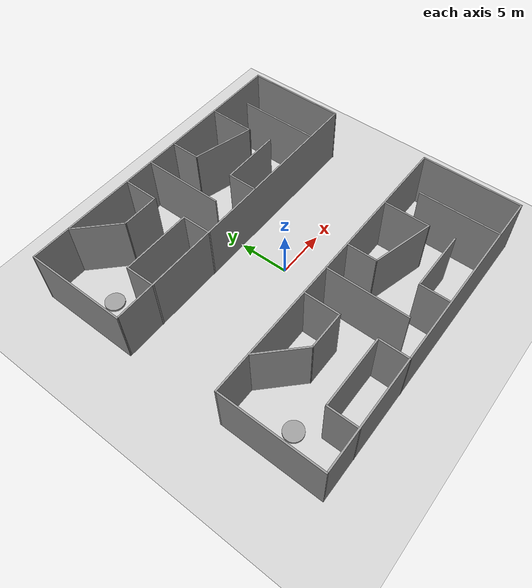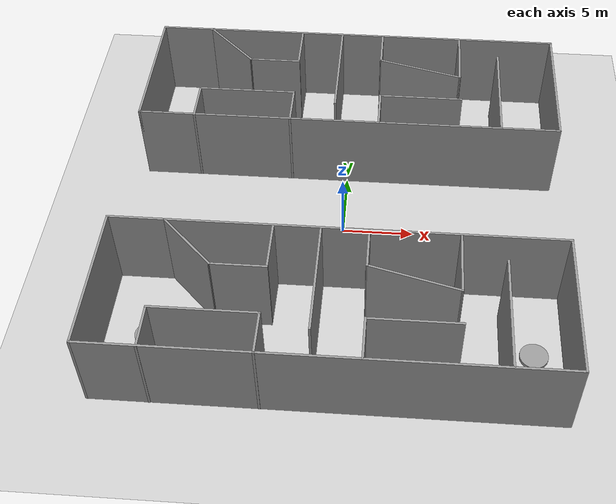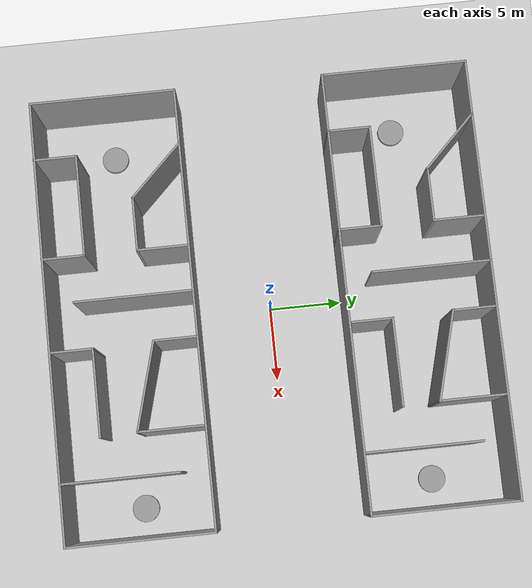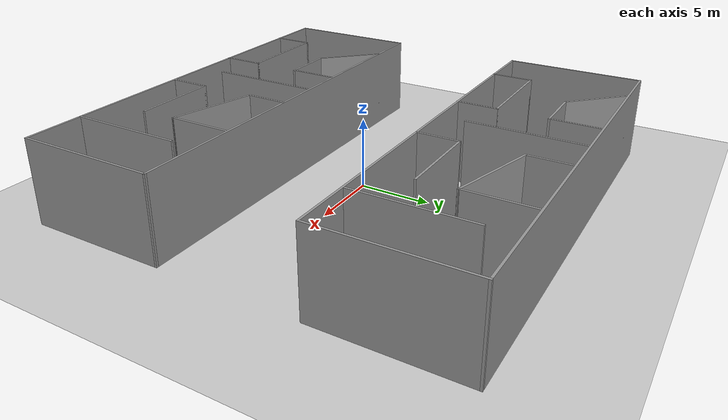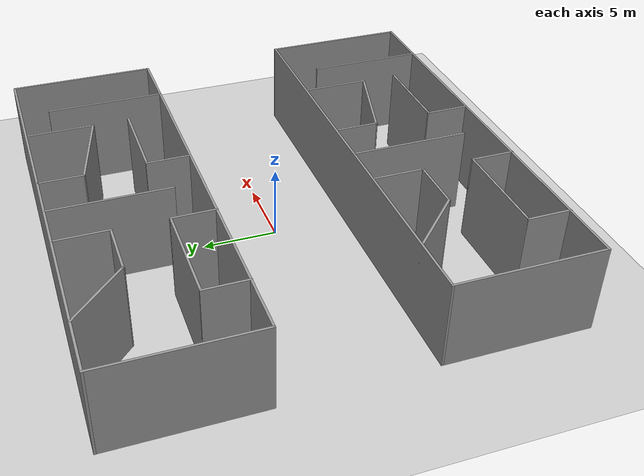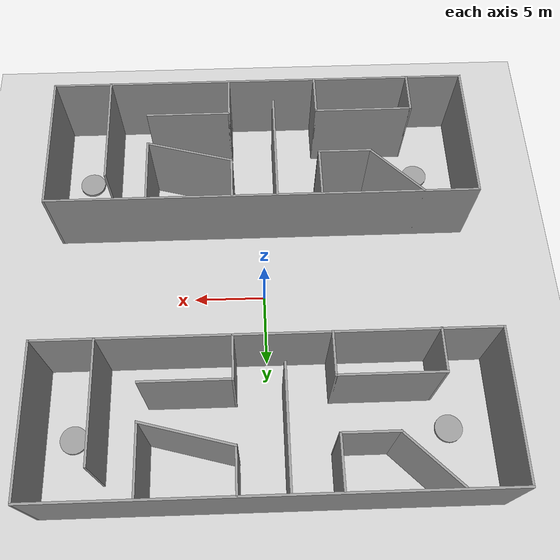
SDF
<sdf version="1.6">
 <world name="default">
  <light name="sun" type="directional">
   <pose>0 0 10 0 -0 0</pose>
   <diffuse>0.8 0.8 0.8 1</diffuse>
   <specular>0.2 0.2 0.2 1</specular>
   <attenuation>
    <range>1000</range>
    <constant>0.9</constant>
    <linear>0.01</linear>
    <quadratic>0.001</quadratic>
   </attenuation>
   <direction>-0.5 0.1 -0.9</direction>
  </light>
  <model name="ground_plane">
   <static>1</static>
   <link name="link">
    <collision name="collision">
     <geometry><plane><normal>0 0 1</normal><size>100 100</size></plane></geometry>
     <surface>
      <contact><collide_bitmask>65535</collide_bitmask></contact>
      <friction><ode><mu>100</mu><mu2>50</mu2></ode></friction>
     </surface>
    </collision>
    <visual name="visual">
     <cast_shadows>0</cast_shadows>
     <geometry><plane><normal>0 0 1</normal><size>100 100</size></plane></geometry>
     <material>
      <script><uri>file://media/materials/scripts/gazebo.material</uri><name>Gazebo/Grey</name></script>
     </material>
    </visual>
   </link>
  </model>
  <gravity>0 0 -9.8</gravity>
  <magnetic_field>6e-06 2.3e-05 -4.2e-05</magnetic_field>
  <atmosphere type="adiabatic"/>
  <physics name="default_physics" default="0" type="ode">
   <max_step_size>0.001</max_step_size>
   <real_time_factor>1</real_time_factor>
   <real_time_update_rate>1000</real_time_update_rate>
  </physics>
  <scene><ambient>0.4 0.4 0.4 1</ambient><background>0.7 0.7 0.7 1</background><shadows>1</shadows></scene>
  <spherical_coordinates>
   <surface_model>EARTH_WGS84</surface_model>
   <latitude_deg>0</latitude_deg>
   <longitude_deg>0</longitude_deg>
   <elevation>0</elevation>
   <heading_deg>0</heading_deg>
  </spherical_coordinates>
  <model name="static_cylinder">
   <link name="link">
    <inertial>
     <mass>1</mass>
     <inertia><ixx>0.145833</ixx><ixy>0</ixy><ixz>0</ixz><iyy>0.145833</iyy><iyz>0</iyz><izz>0.125</izz></inertia>
    </inertial>
    <visual name="visual">
     <geometry><cylinder><radius>0.935681</radius><length>0.376628</length></cylinder></geometry>
     <material>
      <script><name>Gazebo/Grey</name><uri>file://media/materials/scripts/gazebo.material</uri></script>
      <shader type="pixel"/>
      <ambient>0.3 0.3 0.3 1</ambient>
      <diffuse>0.7 0.7 0.7 1</diffuse>
      <specular>0.01 0.01 0.01 1</specular>
      <emissive>0 0 0 1</emissive>
     </material>
    </visual>
    <collision name="collision">
     <geometry><cylinder><radius>0.935681</radius><length>0.376628</length></cylinder></geometry>
     <surface>
      <friction>
       <ode><mu>1</mu><mu2>1</mu2><fdir1>0 0 0</fdir1><slip1>0</slip1><slip2>0</slip2></ode>
       <torsional>
        <coefficient>1</coefficient>
        <patch_radius>0</patch_radius>
        <surface_radius>0</surface_radius>
        <use_patch_radius>1</use_patch_radius>
        <ode><slip>0</slip></ode>
       </torsional>
      </friction>
      <bounce><restitution_coefficient>0</restitution_coefficient><threshold>1e+06</threshold></bounce>
      <contact>
       <collide_without_contact>0</collide_without_contact>
       <collide_without_contact_bitmask>1</collide_without_contact_bitmask>
       <collide_bitmask>1</collide_bitmask>
       <ode>
        <soft_cfm>0</soft_cfm>
        <soft_erp>0.2</soft_erp>
        <kp>1e+13</kp>
        <kd>1</kd>
        <max_vel>0.01</max_vel>
        <min_depth>0</min_depth>
       </ode>
       <bullet>
        <split_impulse>1</split_impulse>
        <split_impulse_penetration_threshold>-0.01</split_impulse_penetration_threshold>
        <soft_cfm>0</soft_cfm>
        <soft_erp>0.2</soft_erp>
        <kp>1e+13</kp>
        <kd>1</kd>
       </bullet>
      </contact>
     </surface>
    </collision>
   </link>
   <static>1</static>
   <pose>-12 10 0 0 -0 0</pose>
  </model>
  <model name="simple_maze_5_0">
   <pose>0 10 0 0 -0 0</pose>
   <link name="Wall_46">
    <collision name="Wall_46_Collision">
     <geometry><box><size>10 0.15 6</size></box></geometry>
     <pose>0 0 3 0 -0 0</pose>
    </collision>
    <visual name="Wall_46_Visual">
     <pose>0 0 3 0 -0 0</pose>
     <geometry><box><size>10 0.15 6</size></box></geometry>
     <material>
      <script><uri>file://media/materials/scripts/gazebo.material</uri><name>Gazebo/Grey</name></script>
      <ambient>1 1 1 1</ambient>
     </material>
     <meta><layer>0</layer></meta>
    </visual>
    <pose>-14.925 0.00985 0 0 0 -1.5708</pose>
   </link>
   <link name="Wall_47">
    <collision name="Wall_47_Collision">
     <geometry><box><size>30 0.15 6</size></box></geometry>
     <pose>0 0 3 0 -0 0</pose>
    </collision>
    <visual name="Wall_47_Visual">
     <pose>0 0 3 0 -0 0</pose>
     <geometry><box><size>30 0.15 6</size></box></geometry>
     <material>
      <script><uri>file://media/materials/scripts/gazebo.material</uri><name>Gazebo/Grey</name></script>
      <ambient>1 1 1 1</ambient>
     </material>
     <meta><layer>0</layer></meta>
    </visual>
    <pose>0 -4.91515 0 0 -0 0</pose>
   </link>
   <link name="Wall_48">
    <collision name="Wall_48_Collision">
     <geometry><box><size>10 0.15 6</size></box></geometry>
     <pose>0 0 3 0 -0 0</pose>
    </collision>
    <visual name="Wall_48_Visual">
     <pose>0 0 3 0 -0 0</pose>
     <geometry><box><size>10 0.15 6</size></box></geometry>
     <material>
      <script><uri>file://media/materials/scripts/gazebo.material</uri><name>Gazebo/Grey</name></script>
      <ambient>1 1 1 1</ambient>
     </material>
     <meta><layer>0</layer></meta>
    </visual>
    <pose>14.925 0.00985 0 0 -0 1.5708</pose>
   </link>
   <link name="Wall_49">
    <collision name="Wall_49_Collision">
     <geometry><box><size>30 0.15 6</size></box></geometry>
     <pose>0 0 3 0 -0 0</pose>
    </collision>
    <visual name="Wall_49_Visual">
     <pose>0 0 3 0 -0 0</pose>
     <geometry><box><size>30 0.15 6</size></box></geometry>
     <material>
      <script><uri>file://media/materials/scripts/gazebo.material</uri><name>Gazebo/Grey</name></script>
      <ambient>1 1 1 1</ambient>
     </material>
     <meta><layer>0</layer></meta>
    </visual>
    <pose>0 4.93485 0 0 -0 3.14159</pose>
   </link>
   <link name="Wall_55">
    <collision name="Wall_55_Collision">
     <geometry><box><size>3 0.15 6</size></box></geometry>
     <pose>0 0 3 0 -0 0</pose>
    </collision>
    <visual name="Wall_55_Visual">
     <pose>0 0 3 0 -0 0</pose>
     <geometry><box><size>3 0.15 6</size></box></geometry>
     <material>
      <script><uri>file://media/materials/scripts/gazebo.material</uri><name>Gazebo/Grey</name></script>
      <ambient>1 1 1 1</ambient>
     </material>
     <meta><layer>0</layer></meta>
    </visual>
    <pose>-10.975 -3.51015 0 0 -0 1.5708</pose>
   </link>
   <link name="Wall_56">
    <collision name="Wall_56_Collision">
     <geometry><box><size>7 0.15 6</size></box></geometry>
     <pose>0 0 3 0 -0 0</pose>
    </collision>
    <visual name="Wall_56_Visual">
     <pose>0 0 3 0 -0 0</pose>
     <geometry><box><size>7 0.15 6</size></box></geometry>
     <material>
      <script><uri>file://media/materials/scripts/gazebo.material</uri><name>Gazebo/Grey</name></script>
      <ambient>1 1 1 1</ambient>
     </material>
     <meta><layer>0</layer></meta>
    </visual>
    <pose>-7.55 -2.08515 0 0 -0 0</pose>
   </link>
   <link name="Wall_57">
    <collision name="Wall_57_Collision">
     <geometry><box><size>3 0.15 6</size></box></geometry>
     <pose>0 0 3 0 -0 0</pose>
    </collision>
    <visual name="Wall_57_Visual">
     <pose>0 0 3 0 -0 0</pose>
     <geometry><box><size>3 0.15 6</size></box></geometry>
     <material>
      <script><uri>file://media/materials/scripts/gazebo.material</uri><name>Gazebo/Grey</name></script>
      <ambient>1 1 1 1</ambient>
     </material>
     <meta><layer>0</layer></meta>
    </visual>
    <pose>-4.125 -3.51015 0 0 0 -1.5708</pose>
   </link>
   <link name="Wall_59">
    <collision name="Wall_59_Collision">
     <geometry><box><size>3.5 0.15 6</size></box></geometry>
     <pose>0 0 3 0 -0 0</pose>
    </collision>
    <visual name="Wall_59_Visual">
     <pose>0 0 3 0 -0 0</pose>
     <geometry><box><size>3.5 0.15 6</size></box></geometry>
     <material>
      <script><uri>file://media/materials/scripts/gazebo.material</uri><name>Gazebo/Grey</name></script>
      <ambient>1 1 1 1</ambient>
     </material>
     <meta><layer>0</layer></meta>
    </visual>
    <pose>-4.125 3.14985 0 0 0 -1.5708</pose>
   </link>
   <link name="Wall_60">
    <collision name="Wall_60_Collision">
     <geometry><box><size>3.75 0.15 6</size></box></geometry>
     <pose>0 0 3 0 -0 0</pose>
    </collision>
    <visual name="Wall_60_Visual">
     <pose>0 0 3 0 -0 0</pose>
     <geometry><box><size>3.75 0.15 6</size></box></geometry>
     <material>
      <script><uri>file://media/materials/scripts/gazebo.material</uri><name>Gazebo/Grey</name></script>
      <ambient>1 1 1 1</ambient>
     </material>
     <meta><layer>0</layer></meta>
    </visual>
    <pose>-5.925 1.47485 0 0 -0 3.14159</pose>
   </link>
   <link name="Wall_61">
    <collision name="Wall_61_Collision">
     <geometry><box><size>5 0.15 6</size></box></geometry>
     <pose>0 0 3 0 -0 0</pose>
    </collision>
    <visual name="Wall_61_Visual">
     <pose>0 0 3 0 -0 0</pose>
     <geometry><box><size>5 0.15 6</size></box></geometry>
     <material>
      <script><uri>file://media/materials/scripts/gazebo.material</uri><name>Gazebo/Grey</name></script>
      <ambient>1 1 1 1</ambient>
     </material>
     <meta><layer>0</layer></meta>
    </visual>
    <pose>-9.4395 3.18935 0 0 -0 2.35619</pose>
   </link>
   <link name="Wall_73">
    <collision name="Wall_73_Collision">
     <geometry><box><size>8 0.15 6</size></box></geometry>
     <pose>0 0 3 0 -0 0</pose>
    </collision>
    <visual name="Wall_73_Visual">
     <pose>0 0 3 0 -0 0</pose>
     <geometry><box><size>8 0.15 6</size></box></geometry>
     <material>
      <script><uri>file://media/materials/scripts/gazebo.material</uri><name>Gazebo/Grey</name></script>
      <ambient>1 1 1 1</ambient>
     </material>
     <meta><layer>0</layer></meta>
    </visual>
    <pose>-1.04832 0.90985 0 0 0 -1.5708</pose>
   </link>
   <link name="Wall_80">
    <collision name="Wall_80_Collision">
     <geometry><box><size>3 0.15 6</size></box></geometry>
     <pose>0 0 3 0 -0 0</pose>
    </collision>
    <visual name="Wall_80_Visual">
     <pose>0 0 3 0 -0 0</pose>
     <geometry><box><size>3 0.15 6</size></box></geometry>
     <material>
      <script><uri>file://media/materials/scripts/gazebo.material</uri><name>Gazebo/Grey</name></script>
      <ambient>1 1 1 1</ambient>
     </material>
     <meta><layer>0</layer></meta>
    </visual>
    <pose>2.179 -3.46415 0 0 -0 1.5708</pose>
   </link>
   <link name="Wall_82">
    <collision name="Wall_82_Collision">
     <geometry><box><size>6 0.15 6</size></box></geometry>
     <pose>0 0 3 0 -0 0</pose>
    </collision>
    <visual name="Wall_82_Visual">
     <pose>0 0 3 0 -0 0</pose>
     <geometry><box><size>6 0.15 6</size></box></geometry>
     <material>
      <script><uri>file://media/materials/scripts/gazebo.material</uri><name>Gazebo/Grey</name></script>
      <ambient>1 1 1 1</ambient>
     </material>
     <meta><layer>0</layer></meta>
    </visual>
    <pose>5.104 -2.03915 0 0 -0 0</pose>
   </link>
   <link name="Wall_84">
    <collision name="Wall_84_Collision">
     <geometry><box><size>3 0.15 6</size></box></geometry>
     <pose>0 0 3 0 -0 0</pose>
    </collision>
    <visual name="Wall_84_Visual">
     <pose>0 0 3 0 -0 0</pose>
     <geometry><box><size>3 0.15 6</size></box></geometry>
     <material>
      <script><uri>file://media/materials/scripts/gazebo.material</uri><name>Gazebo/Grey</name></script>
      <ambient>1 1 1 1</ambient>
     </material>
     <meta><layer>0</layer></meta>
    </visual>
    <pose>2.062 3.43385 0 0 0 -1.5708</pose>
   </link>
   <link name="Wall_85">
    <collision name="Wall_85_Collision">
     <geometry><box><size>6.25 0.15 6</size></box></geometry>
     <pose>0 0 3 0 -0 0</pose>
    </collision>
    <visual name="Wall_85_Visual">
     <pose>0 0 3 0 -0 0</pose>
     <geometry><box><size>6.25 0.15 6</size></box></geometry>
     <material>
      <script><uri>file://media/materials/scripts/gazebo.material</uri><name>Gazebo/Grey</name></script>
      <ambient>1 1 1 1</ambient>
     </material>
     <meta><layer>0</layer></meta>
    </visual>
    <pose>5.008 1.21935 0 0 0 -0.261838</pose>
   </link>
   <link name="Wall_86">
    <collision name="Wall_86_Collision">
     <geometry><box><size>4.5 0.15 6</size></box></geometry>
     <pose>0 0 3 0 -0 0</pose>
    </collision>
    <visual name="Wall_86_Visual">
     <pose>0 0 3 0 -0 0</pose>
     <geometry><box><size>4.5 0.15 6</size></box></geometry>
     <material>
      <script><uri>file://media/materials/scripts/gazebo.material</uri><name>Gazebo/Grey</name></script>
      <ambient>1 1 1 1</ambient>
     </material>
     <meta><layer>0</layer></meta>
    </visual>
    <pose>7.954 2.60485 0 0 -0 1.5708</pose>
   </link>
   <link name="Wall_88">
    <collision name="Wall_88_Collision">
     <geometry><box><size>8 0.15 6</size></box></geometry>
     <pose>0 0 3 0 -0 0</pose>
    </collision>
    <visual name="Wall_88_Visual">
     <pose>0 0 3 0 -0 0</pose>
     <geometry><box><size>8 0.15 6</size></box></geometry>
     <material>
      <script><uri>file://media/materials/scripts/gazebo.material</uri><name>Gazebo/Grey</name></script>
      <ambient>1 1 1 1</ambient>
     </material>
     <meta><layer>0</layer></meta>
    </visual>
    <pose>10.831 -0.96415 0 0 -0 1.5708</pose>
   </link>
   <static>1</static>
  </model>
  <model name="static_cylinder_clone">
   <link name="link">
    <inertial>
     <mass>1</mass>
     <inertia><ixx>0.145833</ixx><ixy>0</ixy><ixz>0</ixz><iyy>0.145833</iyy><iyz>0</iyz><izz>0.125</izz></inertia>
    </inertial>
    <visual name="visual">
     <geometry><cylinder><radius>0.935682</radius><length>0.376629</length></cylinder></geometry>
     <material>
      <script><name>Gazebo/Grey</name><uri>file://media/materials/scripts/gazebo.material</uri></script>
      <shader type="pixel"/>
      <ambient>0.3 0.3 0.3 1</ambient>
      <diffuse>0.7 0.7 0.7 1</diffuse>
      <specular>0.01 0.01 0.01 1</specular>
      <emissive>0 0 0 1</emissive>
     </material>
    </visual>
    <collision name="collision">
     <geometry><cylinder><radius>0.935682</radius><length>0.376629</length></cylinder></geometry>
     <surface>
      <friction>
       <ode><mu>1</mu><mu2>1</mu2><fdir1>0 0 0</fdir1><slip1>0</slip1><slip2>0</slip2></ode>
       <torsional>
        <coefficient>1</coefficient>
        <patch_radius>0</patch_radius>
        <surface_radius>0</surface_radius>
        <use_patch_radius>1</use_patch_radius>
        <ode><slip>0</slip></ode>
       </torsional>
      </friction>
      <bounce><restitution_coefficient>0</restitution_coefficient><threshold>1e+06</threshold></bounce>
      <contact>
       <collide_without_contact>0</collide_without_contact>
       <collide_without_contact_bitmask>1</collide_without_contact_bitmask>
       <collide_bitmask>1</collide_bitmask>
       <ode>
        <soft_cfm>0</soft_cfm>
        <soft_erp>0.2</soft_erp>
        <kp>1e+13</kp>
        <kd>1</kd>
        <max_vel>0.01</max_vel>
        <min_depth>0</min_depth>
       </ode>
       <bullet>
        <split_impulse>1</split_impulse>
        <split_impulse_penetration_threshold>-0.01</split_impulse_penetration_threshold>
        <soft_cfm>0</soft_cfm>
        <soft_erp>0.2</soft_erp>
        <kp>1e+13</kp>
        <kd>1</kd>
       </bullet>
      </contact>
     </surface>
    </collision>
   </link>
   <static>1</static>
   <pose>13 10 0 0 -0 0</pose>
  </model>
  <model name="simple_maze_5">
   <pose>0 -10 0 0 -0 0</pose>
   <link name="Wall_46">
    <collision name="Wall_46_Collision">
     <geometry><box><size>10 0.15 6</size></box></geometry>
     <pose>0 0 3 0 -0 0</pose>
    </collision>
    <visual name="Wall_46_Visual">
     <pose>0 0 3 0 -0 0</pose>
     <geometry><box><size>10 0.15 6</size></box></geometry>
     <material>
      <script><uri>file://media/materials/scripts/gazebo.material</uri><name>Gazebo/Grey</name></script>
      <ambient>1 1 1 1</ambient>
     </material>
     <meta><layer>0</layer></meta>
    </visual>
    <pose>-14.925 0.00985 0 0 0 -1.5708</pose>
   </link>
   <link name="Wall_47">
    <collision name="Wall_47_Collision">
     <geometry><box><size>30 0.15 6</size></box></geometry>
     <pose>0 0 3 0 -0 0</pose>
    </collision>
    <visual name="Wall_47_Visual">
     <pose>0 0 3 0 -0 0</pose>
     <geometry><box><size>30 0.15 6</size></box></geometry>
     <material>
      <script><uri>file://media/materials/scripts/gazebo.material</uri><name>Gazebo/Grey</name></script>
      <ambient>1 1 1 1</ambient>
     </material>
     <meta><layer>0</layer></meta>
    </visual>
    <pose>0 -4.91515 0 0 -0 0</pose>
   </link>
   <link name="Wall_48">
    <collision name="Wall_48_Collision">
     <geometry><box><size>10 0.15 6</size></box></geometry>
     <pose>0 0 3 0 -0 0</pose>
    </collision>
    <visual name="Wall_48_Visual">
     <pose>0 0 3 0 -0 0</pose>
     <geometry><box><size>10 0.15 6</size></box></geometry>
     <material>
      <script><uri>file://media/materials/scripts/gazebo.material</uri><name>Gazebo/Grey</name></script>
      <ambient>1 1 1 1</ambient>
     </material>
     <meta><layer>0</layer></meta>
    </visual>
    <pose>14.925 0.00985 0 0 -0 1.5708</pose>
   </link>
   <link name="Wall_49">
    <collision name="Wall_49_Collision">
     <geometry><box><size>30 0.15 6</size></box></geometry>
     <pose>0 0 3 0 -0 0</pose>
    </collision>
    <visual name="Wall_49_Visual">
     <pose>0 0 3 0 -0 0</pose>
     <geometry><box><size>30 0.15 6</size></box></geometry>
     <material>
      <script><uri>file://media/materials/scripts/gazebo.material</uri><name>Gazebo/Grey</name></script>
      <ambient>1 1 1 1</ambient>
     </material>
     <meta><layer>0</layer></meta>
    </visual>
    <pose>0 4.93485 0 0 -0 3.14159</pose>
   </link>
   <link name="Wall_55">
    <collision name="Wall_55_Collision">
     <geometry><box><size>3 0.15 6</size></box></geometry>
     <pose>0 0 3 0 -0 0</pose>
    </collision>
    <visual name="Wall_55_Visual">
     <pose>0 0 3 0 -0 0</pose>
     <geometry><box><size>3 0.15 6</size></box></geometry>
     <material>
      <script><uri>file://media/materials/scripts/gazebo.material</uri><name>Gazebo/Grey</name></script>
      <ambient>1 1 1 1</ambient>
     </material>
     <meta><layer>0</layer></meta>
    </visual>
    <pose>-10.975 -3.51015 0 0 -0 1.5708</pose>
   </link>
   <link name="Wall_56">
    <collision name="Wall_56_Collision">
     <geometry><box><size>7 0.15 6</size></box></geometry>
     <pose>0 0 3 0 -0 0</pose>
    </collision>
    <visual name="Wall_56_Visual">
     <pose>0 0 3 0 -0 0</pose>
     <geometry><box><size>7 0.15 6</size></box></geometry>
     <material>
      <script><uri>file://media/materials/scripts/gazebo.material</uri><name>Gazebo/Grey</name></script>
      <ambient>1 1 1 1</ambient>
     </material>
     <meta><layer>0</layer></meta>
    </visual>
    <pose>-7.55 -2.08515 0 0 -0 0</pose>
   </link>
   <link name="Wall_57">
    <collision name="Wall_57_Collision">
     <geometry><box><size>3 0.15 6</size></box></geometry>
     <pose>0 0 3 0 -0 0</pose>
    </collision>
    <visual name="Wall_57_Visual">
     <pose>0 0 3 0 -0 0</pose>
     <geometry><box><size>3 0.15 6</size></box></geometry>
     <material>
      <script><uri>file://media/materials/scripts/gazebo.material</uri><name>Gazebo/Grey</name></script>
      <ambient>1 1 1 1</ambient>
     </material>
     <meta><layer>0</layer></meta>
    </visual>
    <pose>-4.125 -3.51015 0 0 0 -1.5708</pose>
   </link>
   <link name="Wall_59">
    <collision name="Wall_59_Collision">
     <geometry><box><size>3.5 0.15 6</size></box></geometry>
     <pose>0 0 3 0 -0 0</pose>
    </collision>
    <visual name="Wall_59_Visual">
     <pose>0 0 3 0 -0 0</pose>
     <geometry><box><size>3.5 0.15 6</size></box></geometry>
     <material>
      <script><uri>file://media/materials/scripts/gazebo.material</uri><name>Gazebo/Grey</name></script>
      <ambient>1 1 1 1</ambient>
     </material>
     <meta><layer>0</layer></meta>
    </visual>
    <pose>-4.125 3.14985 0 0 0 -1.5708</pose>
   </link>
   <link name="Wall_60">
    <collision name="Wall_60_Collision">
     <geometry><box><size>3.75 0.15 6</size></box></geometry>
     <pose>0 0 3 0 -0 0</pose>
    </collision>
    <visual name="Wall_60_Visual">
     <pose>0 0 3 0 -0 0</pose>
     <geometry><box><size>3.75 0.15 6</size></box></geometry>
     <material>
      <script><uri>file://media/materials/scripts/gazebo.material</uri><name>Gazebo/Grey</name></script>
      <ambient>1 1 1 1</ambient>
     </material>
     <meta><layer>0</layer></meta>
    </visual>
    <pose>-5.925 1.47485 0 0 -0 3.14159</pose>
   </link>
   <link name="Wall_61">
    <collision name="Wall_61_Collision">
     <geometry><box><size>5 0.15 6</size></box></geometry>
     <pose>0 0 3 0 -0 0</pose>
    </collision>
    <visual name="Wall_61_Visual">
     <pose>0 0 3 0 -0 0</pose>
     <geometry><box><size>5 0.15 6</size></box></geometry>
     <material>
      <script><uri>file://media/materials/scripts/gazebo.material</uri><name>Gazebo/Grey</name></script>
      <ambient>1 1 1 1</ambient>
     </material>
     <meta><layer>0</layer></meta>
    </visual>
    <pose>-9.4395 3.18935 0 0 -0 2.35619</pose>
   </link>
   <link name="Wall_73">
    <collision name="Wall_73_Collision">
     <geometry><box><size>8 0.15 6</size></box></geometry>
     <pose>0 0 3 0 -0 0</pose>
    </collision>
    <visual name="Wall_73_Visual">
     <pose>0 0 3 0 -0 0</pose>
     <geometry><box><size>8 0.15 6</size></box></geometry>
     <material>
      <script><uri>file://media/materials/scripts/gazebo.material</uri><name>Gazebo/Grey</name></script>
      <ambient>1 1 1 1</ambient>
     </material>
     <meta><layer>0</layer></meta>
    </visual>
    <pose>-1.04832 0.90985 0 0 0 -1.5708</pose>
   </link>
   <link name="Wall_80">
    <collision name="Wall_80_Collision">
     <geometry><box><size>3 0.15 6</size></box></geometry>
     <pose>0 0 3 0 -0 0</pose>
    </collision>
    <visual name="Wall_80_Visual">
     <pose>0 0 3 0 -0 0</pose>
     <geometry><box><size>3 0.15 6</size></box></geometry>
     <material>
      <script><uri>file://media/materials/scripts/gazebo.material</uri><name>Gazebo/Grey</name></script>
      <ambient>1 1 1 1</ambient>
     </material>
     <meta><layer>0</layer></meta>
    </visual>
    <pose>2.179 -3.46415 0 0 -0 1.5708</pose>
   </link>
   <link name="Wall_82">
    <collision name="Wall_82_Collision">
     <geometry><box><size>6 0.15 6</size></box></geometry>
     <pose>0 0 3 0 -0 0</pose>
    </collision>
    <visual name="Wall_82_Visual">
     <pose>0 0 3 0 -0 0</pose>
     <geometry><box><size>6 0.15 6</size></box></geometry>
     <material>
      <script><uri>file://media/materials/scripts/gazebo.material</uri><name>Gazebo/Grey</name></script>
      <ambient>1 1 1 1</ambient>
     </material>
     <meta><layer>0</layer></meta>
    </visual>
    <pose>5.104 -2.03915 0 0 -0 0</pose>
   </link>
   <link name="Wall_84">
    <collision name="Wall_84_Collision">
     <geometry><box><size>3 0.15 6</size></box></geometry>
     <pose>0 0 3 0 -0 0</pose>
    </collision>
    <visual name="Wall_84_Visual">
     <pose>0 0 3 0 -0 0</pose>
     <geometry><box><size>3 0.15 6</size></box></geometry>
     <material>
      <script><uri>file://media/materials/scripts/gazebo.material</uri><name>Gazebo/Grey</name></script>
      <ambient>1 1 1 1</ambient>
     </material>
     <meta><layer>0</layer></meta>
    </visual>
    <pose>2.062 3.43385 0 0 0 -1.5708</pose>
   </link>
   <link name="Wall_85">
    <collision name="Wall_85_Collision">
     <geometry><box><size>6.25 0.15 6</size></box></geometry>
     <pose>0 0 3 0 -0 0</pose>
    </collision>
    <visual name="Wall_85_Visual">
     <pose>0 0 3 0 -0 0</pose>
     <geometry><box><size>6.25 0.15 6</size></box></geometry>
     <material>
      <script><uri>file://media/materials/scripts/gazebo.material</uri><name>Gazebo/Grey</name></script>
      <ambient>1 1 1 1</ambient>
     </material>
     <meta><layer>0</layer></meta>
    </visual>
    <pose>5.008 1.21935 0 0 0 -0.261838</pose>
   </link>
   <link name="Wall_86">
    <collision name="Wall_86_Collision">
     <geometry><box><size>4.5 0.15 6</size></box></geometry>
     <pose>0 0 3 0 -0 0</pose>
    </collision>
    <visual name="Wall_86_Visual">
     <pose>0 0 3 0 -0 0</pose>
     <geometry><box><size>4.5 0.15 6</size></box></geometry>
     <material>
      <script><uri>file://media/materials/scripts/gazebo.material</uri><name>Gazebo/Grey</name></script>
      <ambient>1 1 1 1</ambient>
     </material>
     <meta><layer>0</layer></meta>
    </visual>
    <pose>7.954 2.60485 0 0 -0 1.5708</pose>
   </link>
   <link name="Wall_88">
    <collision name="Wall_88_Collision">
     <geometry><box><size>8 0.15 6</size></box></geometry>
     <pose>0 0 3 0 -0 0</pose>
    </collision>
    <visual name="Wall_88_Visual">
     <pose>0 0 3 0 -0 0</pose>
     <geometry><box><size>8 0.15 6</size></box></geometry>
     <material>
      <script><uri>file://media/materials/scripts/gazebo.material</uri><name>Gazebo/Grey</name></script>
      <ambient>1 1 1 1</ambient>
     </material>
     <meta><layer>0</layer></meta>
    </visual>
    <pose>10.831 -0.96415 0 0 -0 1.5708</pose>
   </link>
   <static>1</static>
  </model>
  <model name="static_cylinder_clone_0">
   <link name="link">
    <inertial>
     <mass>1</mass>
     <inertia><ixx>0.145833</ixx><ixy>0</ixy><ixz>0</ixz><iyy>0.145833</iyy><iyz>0</iyz><izz>0.125</izz></inertia>
    </inertial>
    <visual name="visual">
     <geometry><cylinder><radius>0.935682</radius><length>0.376629</length></cylinder></geometry>
     <material>
      <script><name>Gazebo/Grey</name><uri>file://media/materials/scripts/gazebo.material</uri></script>
      <shader type="pixel"/>
      <ambient>0.3 0.3 0.3 1</ambient>
      <diffuse>0.7 0.7 0.7 1</diffuse>
      <specular>0.01 0.01 0.01 1</specular>
      <emissive>0 0 0 1</emissive>
     </material>
    </visual>
    <collision name="collision">
     <geometry><cylinder><radius>0.935682</radius><length>0.376629</length></cylinder></geometry>
     <surface>
      <friction>
       <ode><mu>1</mu><mu2>1</mu2><fdir1>0 0 0</fdir1><slip1>0</slip1><slip2>0</slip2></ode>
       <torsional>
        <coefficient>1</coefficient>
        <patch_radius>0</patch_radius>
        <surface_radius>0</surface_radius>
        <use_patch_radius>1</use_patch_radius>
        <ode><slip>0</slip></ode>
       </torsional>
      </friction>
      <bounce><restitution_coefficient>0</restitution_coefficient><threshold>1e+06</threshold></bounce>
      <contact>
       <collide_without_contact>0</collide_without_contact>
       <collide_without_contact_bitmask>1</collide_without_contact_bitmask>
       <collide_bitmask>1</collide_bitmask>
       <ode>
        <soft_cfm>0</soft_cfm>
        <soft_erp>0.2</soft_erp>
        <kp>1e+13</kp>
        <kd>1</kd>
        <max_vel>0.01</max_vel>
        <min_depth>0</min_depth>
       </ode>
       <bullet>
        <split_impulse>1</split_impulse>
        <split_impulse_penetration_threshold>-0.01</split_impulse_penetration_threshold>
        <soft_cfm>0</soft_cfm>
        <soft_erp>0.2</soft_erp>
        <kp>1e+13</kp>
        <kd>1</kd>
       </bullet>
      </contact>
     </surface>
    </collision>
   </link>
   <static>1</static>
   <pose>-12 -10 0 0 -0 0</pose>
  </model>
  <model name="static_cylinder_clone_0_clone">
   <link name="link">
    <inertial>
     <mass>1</mass>
     <inertia><ixx>0.145833</ixx><ixy>0</ixy><ixz>0</ixz><iyy>0.145833</iyy><iyz>0</iyz><izz>0.125</izz></inertia>
    </inertial>
    <visual name="visual">
     <geometry><cylinder><radius>0.935682</radius><length>0.376629</length></cylinder></geometry>
     <material>
      <script><name>Gazebo/Grey</name><uri>file://media/materials/scripts/gazebo.material</uri></script>
      <shader type="pixel"/>
      <ambient>0.3 0.3 0.3 1</ambient>
      <diffuse>0.7 0.7 0.7 1</diffuse>
      <specular>0.01 0.01 0.01 1</specular>
      <emissive>0 0 0 1</emissive>
     </material>
    </visual>
    <collision name="collision">
     <geometry><cylinder><radius>0.935682</radius><length>0.376629</length></cylinder></geometry>
     <surface>
      <friction>
       <ode><mu>1</mu><mu2>1</mu2><fdir1>0 0 0</fdir1><slip1>0</slip1><slip2>0</slip2></ode>
       <torsional>
        <coefficient>1</coefficient>
        <patch_radius>0</patch_radius>
        <surface_radius>0</surface_radius>
        <use_patch_radius>1</use_patch_radius>
        <ode><slip>0</slip></ode>
       </torsional>
      </friction>
      <bounce><restitution_coefficient>0</restitution_coefficient><threshold>1e+06</threshold></bounce>
      <contact>
       <collide_without_contact>0</collide_without_contact>
       <collide_without_contact_bitmask>1</collide_without_contact_bitmask>
       <collide_bitmask>1</collide_bitmask>
       <ode>
        <soft_cfm>0</soft_cfm>
        <soft_erp>0.2</soft_erp>
        <kp>1e+13</kp>
        <kd>1</kd>
        <max_vel>0.01</max_vel>
        <min_depth>0</min_depth>
       </ode>
       <bullet>
        <split_impulse>1</split_impulse>
        <split_impulse_penetration_threshold>-0.01</split_impulse_penetration_threshold>
        <soft_cfm>0</soft_cfm>
        <soft_erp>0.2</soft_erp>
        <kp>1e+13</kp>
        <kd>1</kd>
       </bullet>
      </contact>
     </surface>
    </collision>
   </link>
   <static>1</static>
   <pose>13 -10 0 0 -0 0</pose>
  </model>
 </world>
</sdf>
